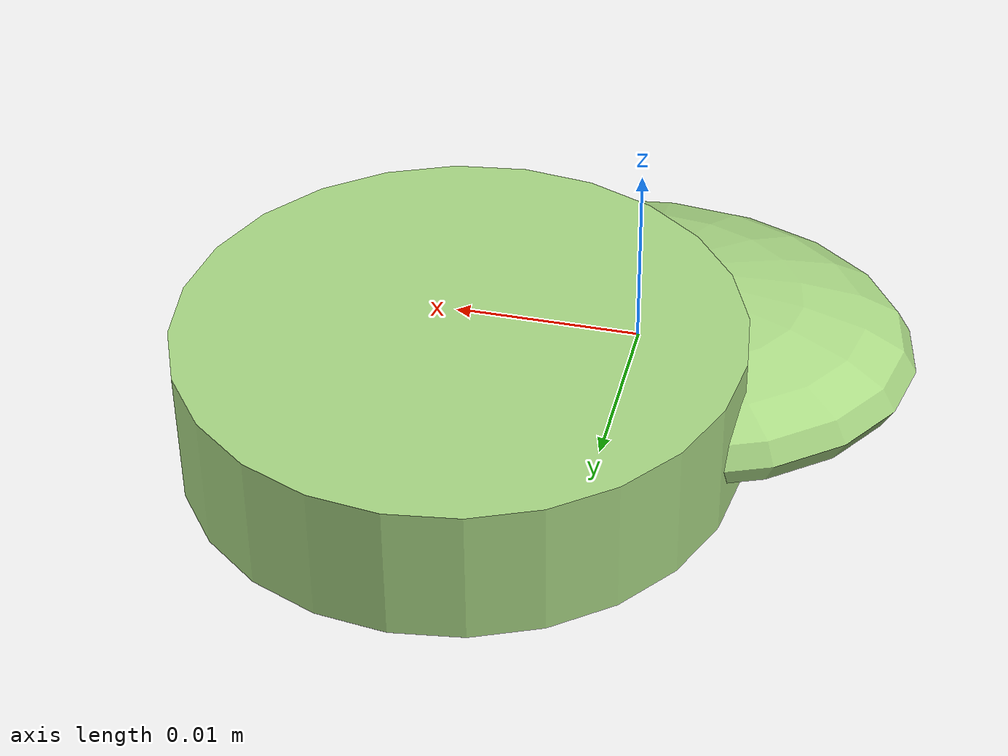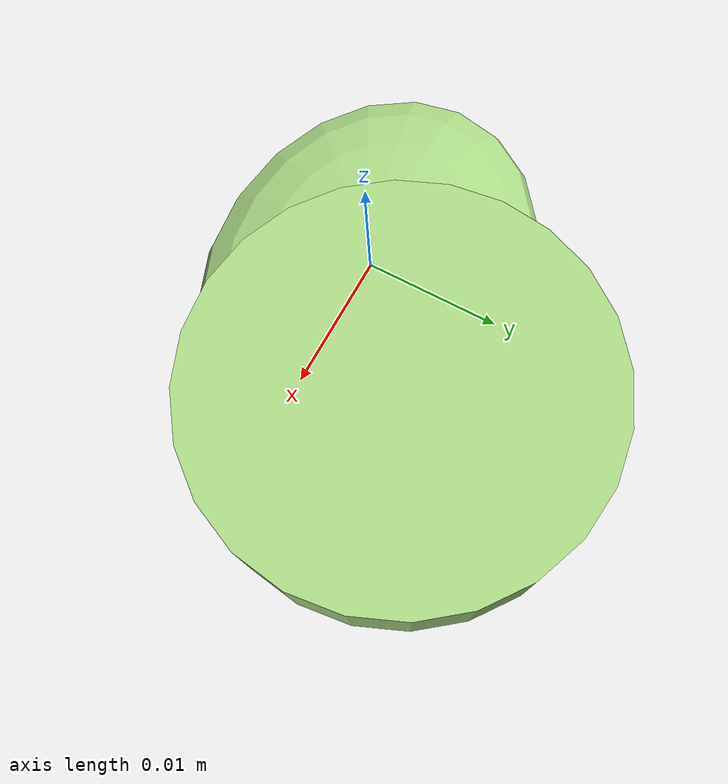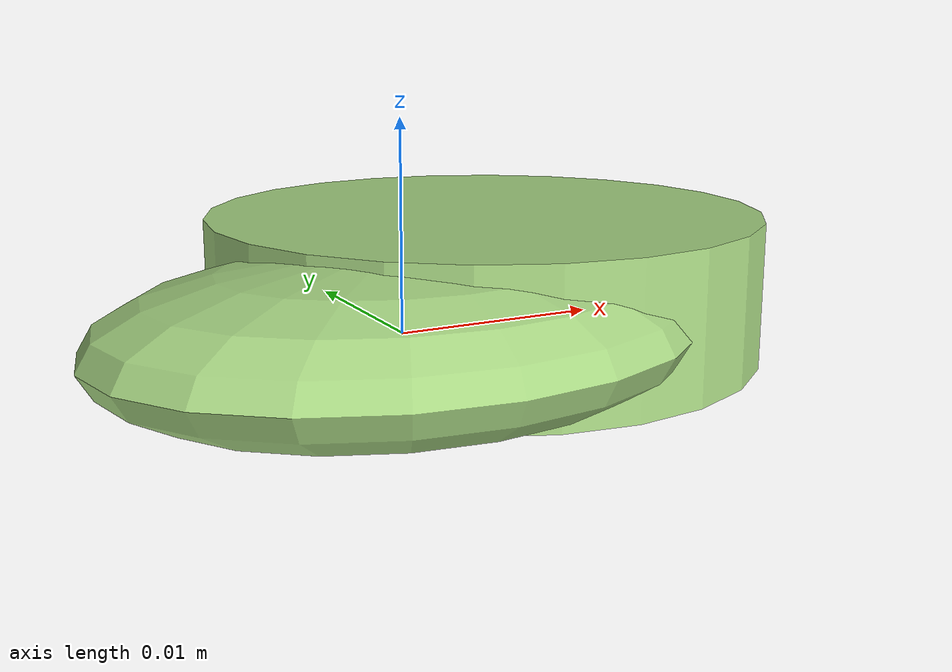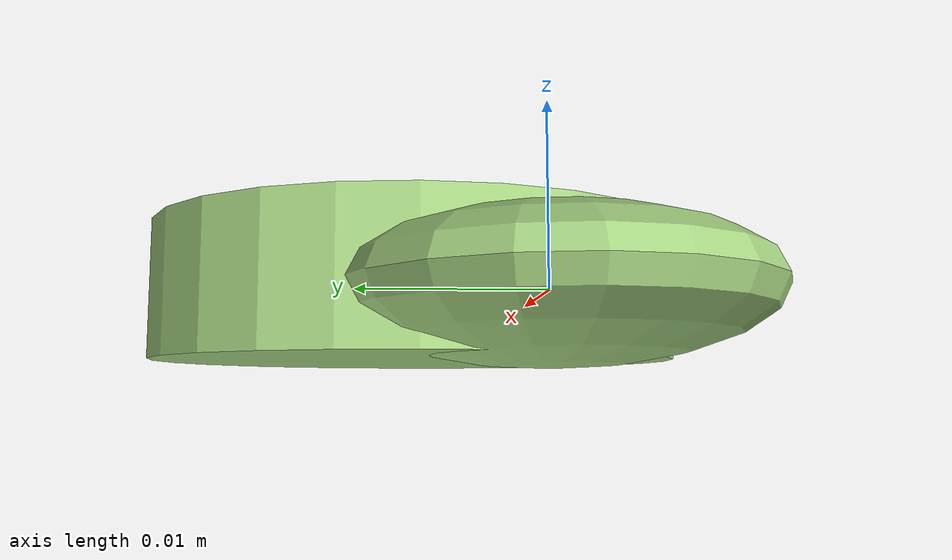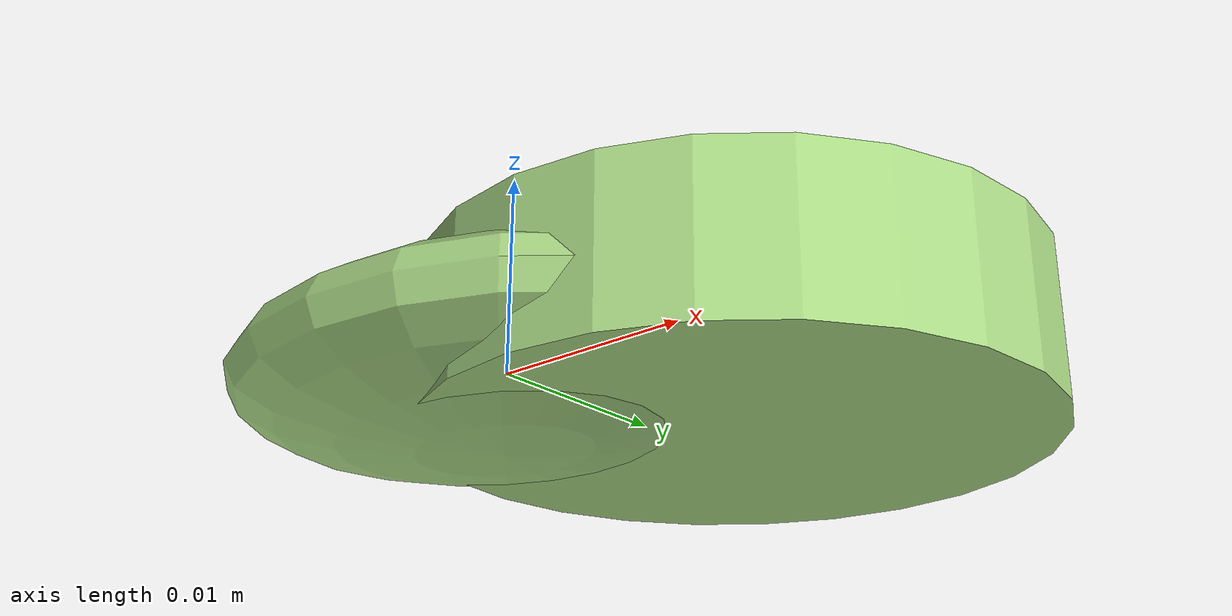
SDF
<?xml version="1.0" ?>
<!-- |    This document was autogenerated by xmacro from data/veggie_template/veggie_base.sdf.xacro  | -->
<!-- |    EDITING THIS FILE BY HAND IS NOT RECOMMENDED                                               | -->
<sdf version="1.8">
	<!-- Parameters -->
	<!-- Base -->
	<!-- Joint 0 -->
	<!-- Link 1 -->
	<!-- Joint 1 -->
	<!-- Link 2 -->
	<!-- Primitives -->
	<!-- All dimensions are half -->
	<!-- Object -->
	<model name="veggie">
		<!-- link0 -->
		<link name="link0">
			<inertial>
				<mass>0.0028500382609677726</mass>
				<inertia>
					<ixx>8.432121553212738e-08</ixx>
					<ixy>0</ixy>
					<ixz>0</ixz>
					<iyy>1.3476944693943774e-07</iyy>
					<iyz>0</iyz>
					<izz>2.00965657882922e-07</izz>
				</inertia>
			</inertial>
			<visual name="link0_visual">
				<pose>0 0 0 0 0 0</pose>
				<geometry>
					<ellipsoid>
						<radii>0.014850439007303071 0.011490476828134207 0.0039873441525412915</radii>
					</ellipsoid>
				</geometry>
				<material>
					<ambient>0.659 0.839 0.514 1</ambient>
					<diffuse>0.659 0.839 0.514 1</diffuse>
					<specular>0 0 0 0</specular>
					<emissive>0 0 0 1</emissive>
				</material>
			</visual>
			<collision name="link0_collision">
				<pose>0 0 0 0 0 0 </pose>
				<geometry>
					<ellipsoid>
						<radii>0.014850439007303071 0.011490476828134207 0.0039873441525412915</radii>
					</ellipsoid>
				</geometry>
			</collision>
		</link>
		<!-- link1 -->
		<joint name="joint0" type="fixed">
			<pose relative_to="link0">0.00799571074845129 0.006852066499106815 0.00047577322272651955 0.0 0.0 0.0</pose>
			<parent>link0</parent>
			<child>link1</child>
		</joint>
		<link name="link1">
			<pose relative_to="joint0">0 0 0 0 0 0</pose>
			<inertial>
				<mass>0.005220334990111136</mass>
				<inertia>
					<ixx>3.1078029329922846e-07</ixx>
					<ixy>0</ixy>
					<ixz>0</ixz>
					<iyy>3.1078029329922846e-07</iyy>
					<iyz>0</iyz>
					<izz>5.714370011904481e-07</izz>
				</inertia>
			</inertial>
			<visual name="link1_visual">
				<pose>0 0 0 0 0 0</pose>
				<geometry>
					<cylinder>
						<radius>0.014796193099820165</radius>
						<length>0.007590100098219972</length>
					</cylinder>
				</geometry>
				<material>
					<ambient>0.659 0.839 0.514 1</ambient>
					<diffuse>0.659 0.839 0.514 1</diffuse>
					<specular>0 0 0 0</specular>
					<emissive>0 0 0 1</emissive>
				</material>
			</visual>
			<collision name="link1_collision">
				<pose>0 0 0 0 0 0 </pose>
				<geometry>
					<cylinder>
						<radius>0.014796193099820165</radius>
						<length>0.007590100098219972</length>
					</cylinder>
				</geometry>
			</collision>
		</link>
		<!-- link2 -->
	</model>
</sdf>
